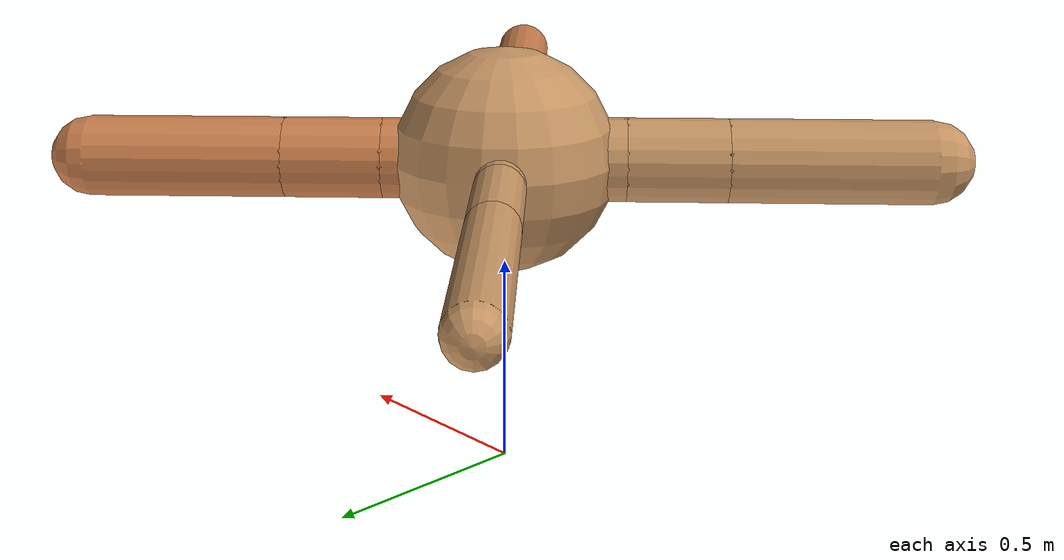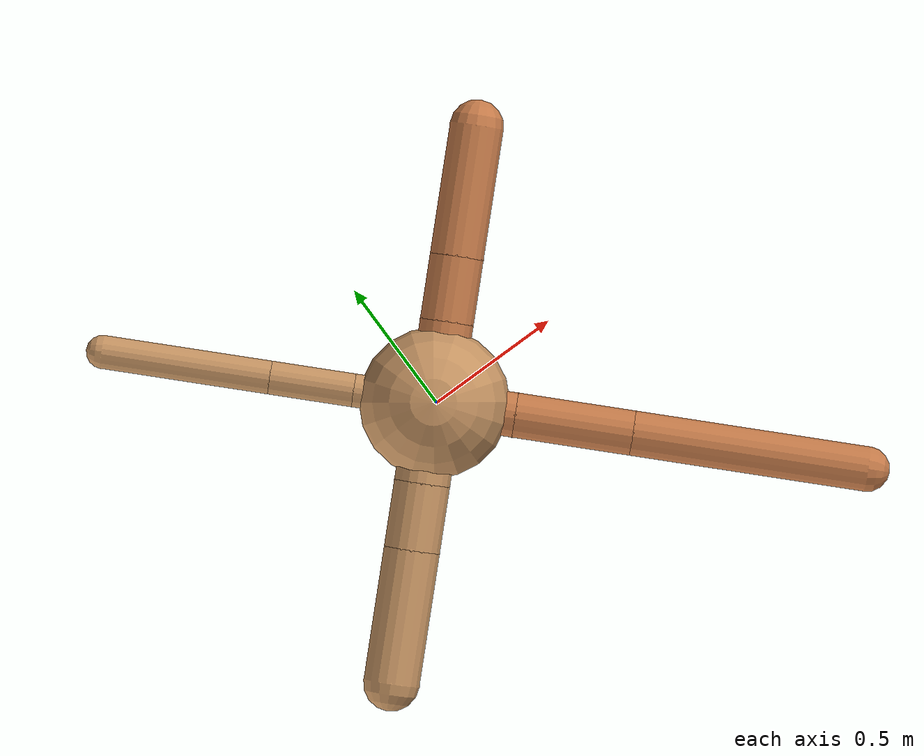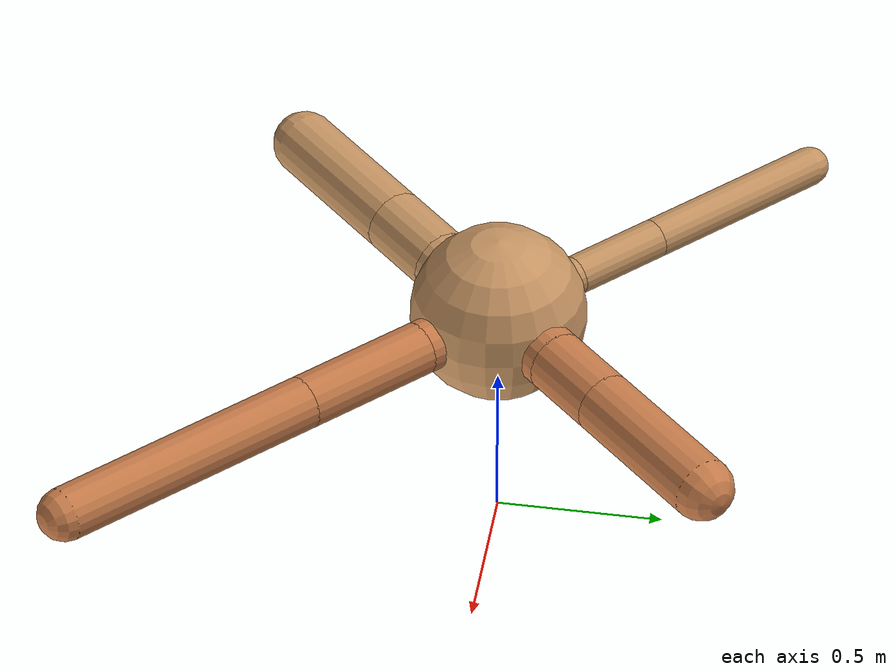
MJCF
<?xml version="1.0" ?>
<mujoco model="ant">

	<compiler angle="degree" coordinate="local" inertiafromgeom="true"/>

	<option integrator="RK4" timestep="0.01"/>

	<custom>

		<numeric data="0.0 0.0 0.55 1.0 0.0 0.0 0.0 0.0 1.0 0.0 -1.0 0.0 -1.0 0.0 1.0" name="init_qpos"/>

	</custom>

	<default>

		<joint armature="1" damping="1" limited="true"/>

		<geom conaffinity="0" condim="3" density="5.0" friction="1.5 0.1 0.1" margin="0.01" rgba="0.8 0.6 0.4 1"/>

	</default>

	<worldbody>

		<body name="torso" pos="0 0 0.75">

			<geom name="torso_geom" pos="0 0 0" size="0.2625380857477013" type="sphere"/>

			<!--joint armature="0" damping="0" limited="false" margin="0.01" name="root" pos="0 0 0" type="free"/-->

			<body name="front_left_leg" pos="0 0 0">

				<geom fromto="0 0 0 0.2 0.2 0" name="aux_1_geom" size="0.09430776637257703" type="capsule" rgba=".8 .5 .3 1"/>

				<body name="aux_1" pos="0.2 0.2 0">

					<joint axis="0 0 1" name="hip_1" pos="0.0 0.0 0.0" range="-40 40" type="hinge"/>

					<geom fromto="0 0 0 0.16205270467708185 0.16205270467708185 0" name="left_leg_geom" size="0.09430776637257703" type="capsule" rgba=".8 .5 .3 1"/>

					<body pos="0.16205270467708185 0.16205270467708185 0" name="front_left_foot">

						<joint axis="-1 1 0" name="ankle_1" pos="0.0 0.0 0.0" range="30 100" type="hinge"/>

						<geom fromto="0 0 0 0.3241054093541637 0.3241054093541637 0" name="left_ankle_geom" size="0.09430776637257703" type="capsule" rgba=".8 .5 .3 1"/>

					</body>

				</body>

			</body>

			<body name="front_right_leg" pos="0 0 0">

				<geom fromto="0 0 0 -0.2 0.2 0" name="aux_2_geom" size="0.05872735275519597" type="capsule"/>

				<body name="aux_2" pos="-0.2 0.2 0">

					<joint axis="0 0 1" name="hip_2" pos="0.0 0.0 0.0" range="-40 40" type="hinge"/>

					<geom fromto="0 0 0 -0.20792534989459777 0.20792534989459777 0" name="right_leg_geom" size="0.05872735275519597" type="capsule"/>

					<body pos="-0.20792534989459777 0.20792534989459777 0" name="front_right_foot">

						<joint axis="1 1 0" name="ankle_2" pos="0.0 0.0 0.0" range="-100 -30" type="hinge"/>

						<geom fromto="0 0 0 -0.41585069978919553 0.41585069978919553 0" name="right_ankle_geom" size="0.05872735275519597" type="capsule"/>

					</body>

				</body>

			</body>

			<body name="left_back_leg" pos="0 0 0">

				<geom fromto="0 0 0 -0.2 -0.2 0" name="aux_3_geom" size="0.09825688550120934" type="capsule"/>

				<body name="aux_3" pos="-0.2 -0.2 0">

					<joint axis="0 0 1" name="hip_3" pos="0.0 0.0 0.0" range="-40 40" type="hinge"/>

					<geom fromto="0 0 0 -0.16566848782531474 -0.16566848782531474 0" name="back_leg_geom" size="0.09825688550120934" type="capsule"/>

					<body pos="-0.16566848782531474 -0.16566848782531474 0" name="left_back_foot">

						<joint axis="-1 1 0" name="ankle_3" pos="0.0 0.0 0.0" range="-100 -30" type="hinge"/>

						<geom fromto="0 0 0 -0.3313369756506295 -0.3313369756506295 0" name="third_ankle_geom" size="0.09825688550120934" type="capsule"/>

					</body>

				</body>

			</body>

			<body name="right_back_leg" pos="0 0 0">

				<geom fromto="0 0 0 0.2 -0.2 0" name="aux_4_geom" size="0.07908461495601202" type="capsule" rgba=".8 .5 .3 1"/>

				<body name="aux_4" pos="0.2 -0.2 0">

					<joint axis="0 0 1" name="hip_4" pos="0.0 0.0 0.0" range="-40 40" type="hinge"/>

					<geom fromto="0 0 0 0.2916894635315401 -0.2916894635315401 0" name="rightback_leg_geom" size="0.07908461495601202" type="capsule" rgba=".8 .5 .3 1"/>

					<body pos="0.2916894635315401 -0.2916894635315401 0" name="right_back_foot">

						<joint axis="1 1 0" name="ankle_4" pos="0.0 0.0 0.0" range="30 100" type="hinge"/>

						<geom fromto="0 0 0 0.5833789270630803 -0.5833789270630803 0" name="fourth_ankle_geom" size="0.07908461495601202" type="capsule" rgba=".8 .5 .3 1"/>

					</body>

				</body>

			</body>

		</body>

	</worldbody>

	<actuator>

		<motor ctrllimited="true" ctrlrange="-1.0 1.0" joint="hip_4" gear="150"/>

		<motor ctrllimited="true" ctrlrange="-1.0 1.0" joint="ankle_4" gear="150"/>

		<motor ctrllimited="true" ctrlrange="-1.0 1.0" joint="hip_1" gear="150"/>

		<motor ctrllimited="true" ctrlrange="-1.0 1.0" joint="ankle_1" gear="150"/>

		<motor ctrllimited="true" ctrlrange="-1.0 1.0" joint="hip_2" gear="150"/>

		<motor ctrllimited="true" ctrlrange="-1.0 1.0" joint="ankle_2" gear="150"/>

		<motor ctrllimited="true" ctrlrange="-1.0 1.0" joint="hip_3" gear="150"/>

		<motor ctrllimited="true" ctrlrange="-1.0 1.0" joint="ankle_3" gear="150"/>

	</actuator>

</mujoco>
